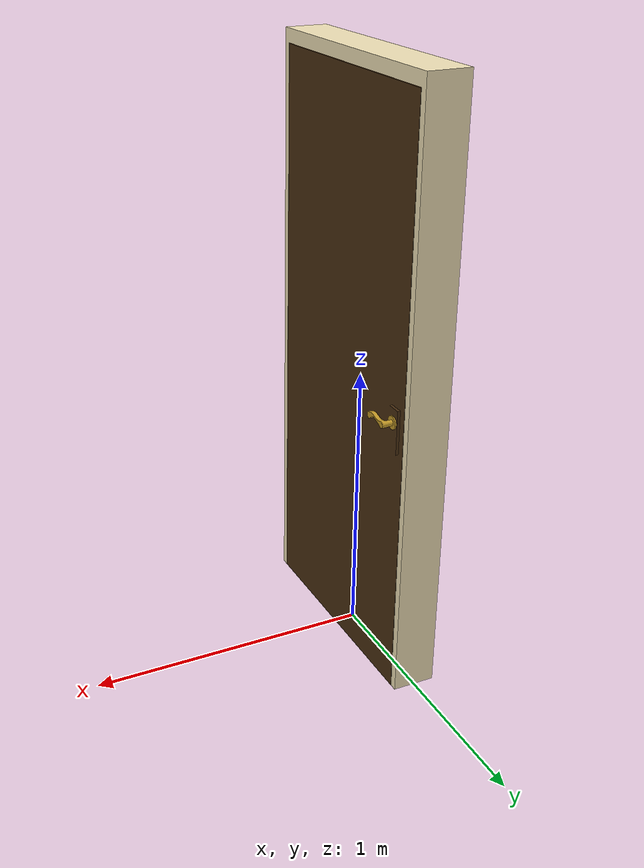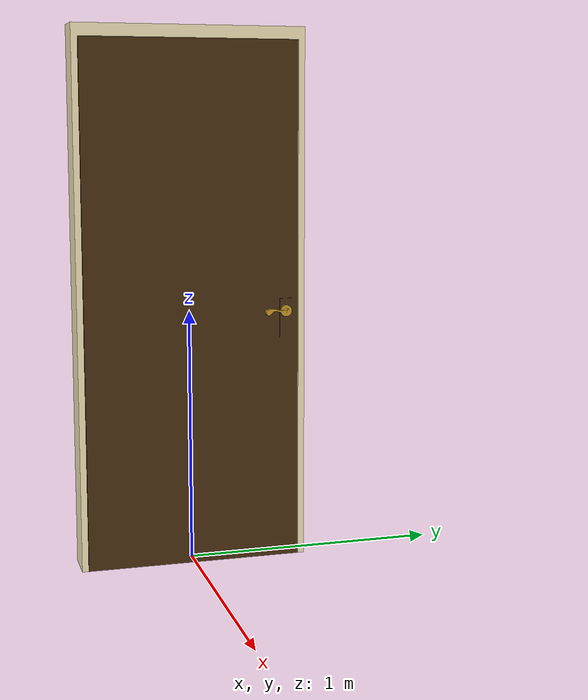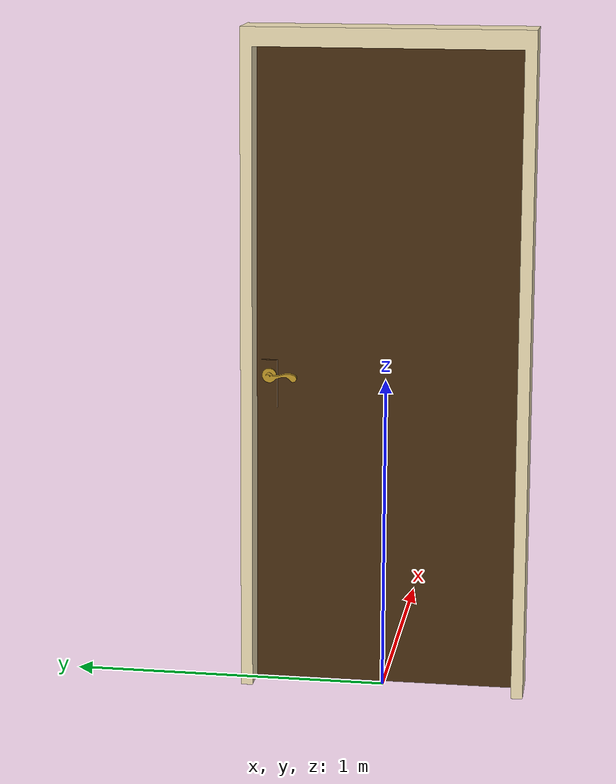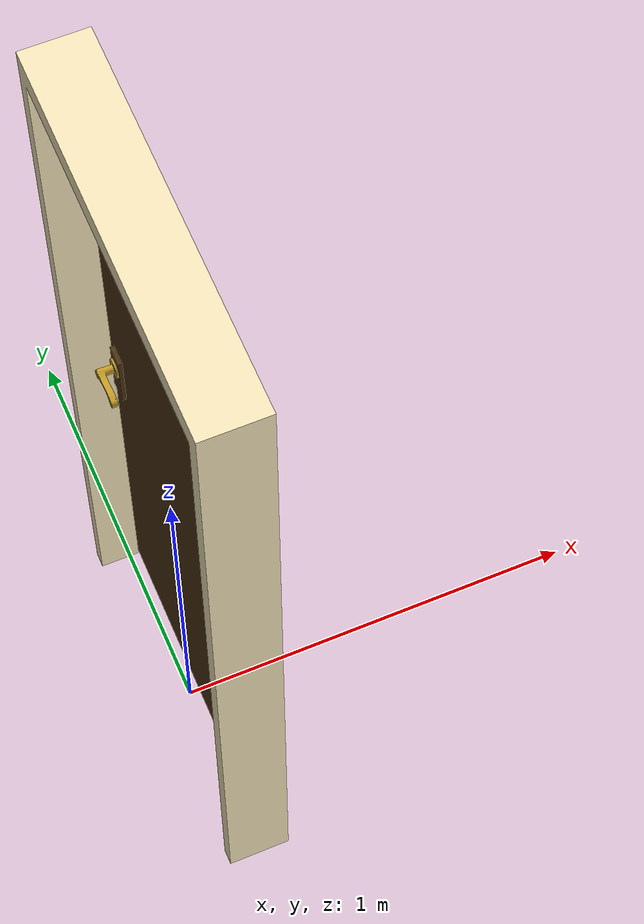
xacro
<?xml version="1.0" ?>
<robot xmlns:xacro="http://www.ros.org/wiki/xacro" name="door">

 <link name="world"/>
  <joint name="fixed" type="fixed">
    <parent link="world"/>
    <child link="frame"/>
    <origin rpy= "0 0 -1.5708" xyz="0.075 -0.425 0"/>
  </joint>

<link name="frame">
    <inertial>
      <origin rpy="0 0 0" xyz="0 0 0"/>
      <mass value="100.0"/>
      <inertia ixx="0.013102127690" 	ixy="-0.000000514790"	ixz="0.000000965200"
					iyy="0.017339000240" 	iyz="-0.000017996010"
								izz="0.004334337460"/>
    </inertial>
    <visual>
      <origin rpy="0 0 0" xyz="0 0 0"/>
      <geometry>
        <mesh filename="package://qm_description/meshes/doors/frame.stl"/>
      </geometry>
	    <material name="ocher">
        <color rgba="0.949 0.890 0.722 1" />
      </material>

	  </visual>
     <collision>
       <origin rpy="0 0 0" xyz="0 0 0"/>
       <geometry>
         <mesh filename="package://qm_description/meshes/doors/frame.stl"/>
       </geometry>
     </collision>

   </link>

  <gazebo reference="frame">
    <material>Gazebo/WoodPallet</material>
  </gazebo>

   <link name="door">
    <inertial>
      <origin rpy="0 0 0" xyz="0 0 0"/>
      <mass value="0.1"/>
      <inertia ixx="0.030386862790" 	ixy="0.000000000330"	ixz="-0.000000216760"
					iyy="0.035534743650" 	iyz="-0.000000000060"
								izz="0.005184277950"/>
    </inertial>

    <visual>
      <origin rpy="0 0 0" xyz="0 0 0"/>
        <geometry>
          <mesh filename="package://qm_description/meshes/doors/door.stl"/>
        </geometry>
        <material name="brown">
          <color rgba="0.29 0.184 0.07 1"/>
        </material>
	  </visual>

    <collision>
      <origin rpy="0 0 0" xyz="0 0 0"/>
      <geometry>
        <mesh filename="package://qm_description/meshes/doors/door.stl"/>
      </geometry>
    </collision>

   </link>

  <gazebo reference="door">
    <material>Gazebo/Wood</material>
  </gazebo>

  <joint name="joint_frame_door" type="revolute">
    <parent link="frame"/>
    <child link="door"/>
    <dynamics damping="0.2" friction="0.000001"/>
    <origin xyz="0 0 0"/>
    <axis xyz="0 0 1"/>
    <limit effort="1000.0" lower="-2.0" upper="0.0" velocity="0.5"/>

  </joint>

  <link name="lever">
    <inertial>
      <origin rpy="0 0 0" xyz="0 0 0"/>
      <mass value="5.0"/>
      <inertia ixx="0.01" ixy="0" ixz="0" iyy="0.01" iyz="0" izz="0.01"/>
    </inertial>
    <visual>
      <origin rpy="0 0 0" xyz="0 0 0"/>
      <geometry>
        <mesh filename="package://qm_description/meshes/doors/lever.stl"/>
      </geometry>
	    <material name="gold">
        <color rgba="0.769 0.604 0.153 1" />
      </material>
	  </visual>
     <collision>
       <origin rpy="0 0 0" xyz="0 0 0"/>
       <geometry>
         <mesh filename="package://qm_description/meshes/doors/lever.stl"/>
       </geometry>
     </collision>

   </link>
  <gazebo reference="lever">
    <material>Gazebo/Gold</material>
  </gazebo>

   <joint name="joint_door_lever" type="revolute">
    <parent link="door"/>
    <child link="lever"/>
	<!--dynamics damping="0.5" friction="0.000001"/-->
    <origin rpy="1.5708 0 0" xyz="-0.79604 -0.06 1.0"/>
		<axis xyz="0 0 1"/>

   <limit effort="1000.0" lower="-0.5236" upper="0.0" velocity="0.5"/>

  <gazebo reference="joint_door_lever">

    <implicitSpringDamper>true</implicitSpringDamper>
    <spring_stiffness>10000</spring_stiffness>
    <spring_reference>0.0</spring_reference>
    <damping>10.0</damping>
  </gazebo>
  </joint>

  <gazebo reference="lever">
    <self_collide>1</self_collide>
  </gazebo>

  <gazebo reference="frame">
    <self_collide>1</self_collide>
  </gazebo>
 <gazebo reference="door">
    <self_collide>1</self_collide>
  </gazebo>
  <gazebo>
    <plugin name="joint_state_publisher" filename="libgazebo_ros_joint_state_publisher.so">
      <robotNamespace>/door</robotNamespace>
      <jointName>joint_frame_door, joint_door_lever</jointName>
    </plugin>
  </gazebo>

</robot>
